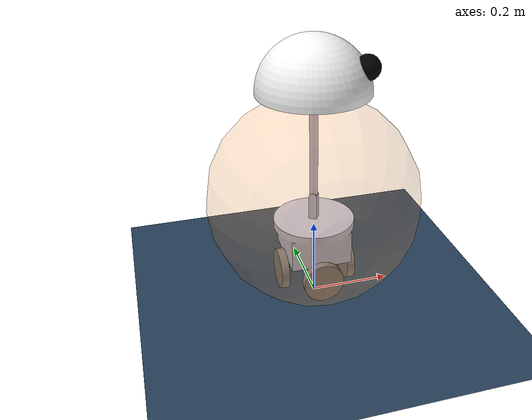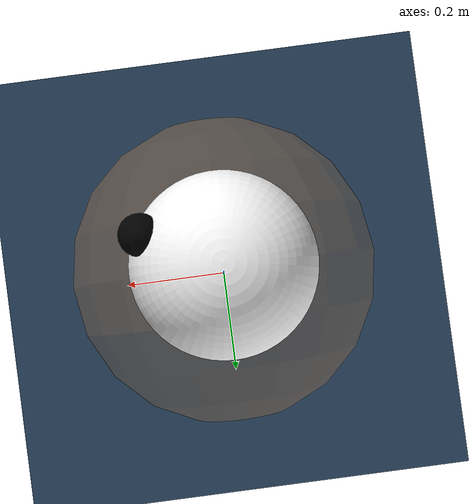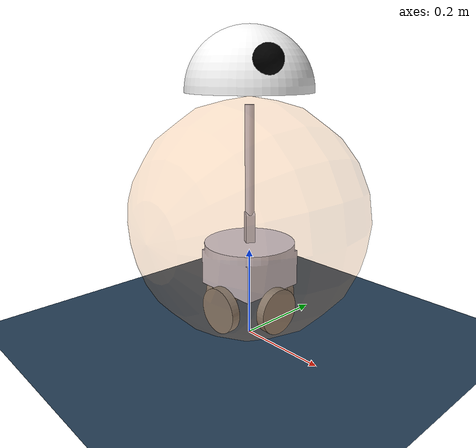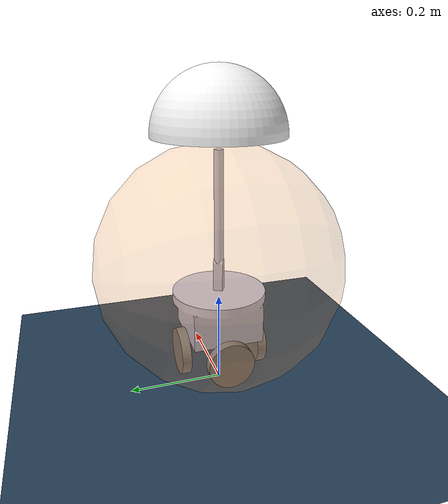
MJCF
<mujoco model="bb8_car">
  <compiler angle="radian" />
  <option timestep="0.001" integrator="implicit">
    <flag warmstart="enable" />
  </option>

  <asset>
    <mesh name="base_link" content_type="model/stl" file="base_link.STL" />
    <mesh name="a1" content_type="model/stl" file="a1.STL" />
    <mesh name="a2" content_type="model/stl" file="a2.STL" />
  <mesh name="h" content_type="model/stl" file="h.STL" scale="1.35 1.35 1.35" />
    <mesh name="w1" content_type="model/stl" file="w1.STL" />
    <mesh name="w2" content_type="model/stl" file="w2.STL" />
    <mesh name="w3" content_type="model/stl" file="w3.STL" />
    <mesh name="w4" content_type="model/stl" file="w4.STL" />
    <texture name="grid" type="2d" builtin="checker" rgb1=".1 .2 .3" rgb2=".2 .3 .4" width="300"
      height="300" />
    <material name="grid" texture="grid" texrepeat="8 8" reflectance=".2" />

    <texture name="bb8_tex" type="2d" file="../sim/bb8_textures/bb8one.png"/>
    <material name="bb8_mat" texture="bb8_tex" texrepeat="1 1" texuniform="false"/>

    <texture name="bb8_head_tex" type="2d" file="../sim/bb8_textures/bb8head.png"/>
    <!-- head texture removed -->
  </asset>

  <worldbody>
    <light name="top" pos="0 0 20" />
    <geom name="floor" type="plane" pos="0 0 0" size="5 5 0.1" material="grid" contype="1"
      conaffinity="1" />
    <body name="base_link" pos="0 0 0.2" quat="-0.707107 0.707107 0 0">
      <camera name="track_com" pos="1.253 -1.502 0.378"
        xyaxes="0.768 0.641 0.000 -0.101 0.122 0.987" mode="trackcom" />
      <inertial pos="-4.4409E-16 0.027063 -3.3307E-16" quat="0 0 0 1" mass="20"
        diaginertia="0.0059267 0.0098916 0.0059267" />

      <geom type="mesh" rgba="0.79216 0.81961 0.93333 1" mesh="base_link" />
      <geom name="sphere" type="sphere" pos="0 -0.075 0" size="0.2625" rgba="0.988 0.612 0.263 0.25"
        contype="0" conaffinity="0" />
      <body name="a1" pos="0 -0.02 0" quat="0.356335 0.356338 0.610757 -0.610757">
        <inertial pos="0 0 0.033964" quat="0.707107 0 0 0.707107" mass="0.027142"
          diaginertia="5.8419e-06 5.8158e-06 1.7833e-06" />
        <joint name="a1" pos="0 0 0" axis="0 0 -1" />
        <geom type="mesh" rgba="0.79216 0.81961 0.93333 1" mesh="a1" contype="0" conaffinity="0" />
        <body name="a2" pos="0 0 0.06" quat="1 0 0 0">
          <inertial pos="4.0307e-08 1.6883e-08 0.12424" quat="0.999977 0 0 0.0067613"
            mass="0.072732" diaginertia="0.00032679 0.00032678 3.6454e-06" />
          <joint name="a2" pos="0 0 0" axis="1 0 0" />
          <geom type="mesh" rgba="0.79216 0.81961 0.93333 1" mesh="a2" />
          <body name="h" pos="0 0 0.40" quat="0.51312 0.486525 0.513122 -0.486527">
            <inertial pos="0.0625 0 0" mass="0.5" diaginertia="0.0083776 0.0054323 0.0054323" />
              <joint name="h" pos="0 0 0" axis="-1 0 0" />
              <!-- make head visually all white -->
              <geom type="mesh" rgba="1 1 1 1" mesh="h" />
      <!-- larger visual-only black dot on the front of the head (no collision)
        moved forward and slightly raised so it sits clearly on the visible face -->
  <!-- move dot closer to the head and shrink it as requested; lowered further to sit like an eye -->
        <geom type="sphere" pos="0.07 0.0 -0.12" size="0.03" rgba="0 0 0 1" contype="0" conaffinity="0" />
          </body>
        </body>
      </body>
      <body name="w1" pos="-0.095 0.117 0" quat="0.499998 0.5 -0.5 0.500002" >
        <inertial pos="0 -0.01 0" quat="0.707107 0 0 0.707107" mass="0.15708"
          diaginertia="0.00019635 0.00010341 0.00010341" />
        <joint name="w1" pos="0 0 0" axis="0 1 0" damping="0.1" />
        <geom type="mesh" mesh="w1" friction="0.8 0.005 0.01" condim="3"/>
      </body>
      <body name="w2" pos="0 0.117 -0.095" quat="0.499998 0.5 -0.5 0.500002">
        <inertial pos="0.01 0 0" mass="0.15708" diaginertia="0.00019635 0.00010341 0.00010341" />
        <joint name="w2" pos="0 0 0" axis="-1 0 0" damping="0.1" />
        <geom type="mesh" mesh="w2" friction="0.8 0.005 0.01" condim="3"/>
      </body>
      <body name="w3" pos="0.095 0.117 0" quat="0.499998 0.5 -0.5 0.500002">
        <inertial pos="0 0.01 0" quat="0.707107 0 0 0.707107" mass="0.15708"
          diaginertia="0.00019635 0.00010341 0.00010341" />
        <joint name="w3" pos="0 0 0" axis="0 -1 0" damping="0.1" />
        <geom type="mesh" mesh="w3" friction="0.8 0.005 0.01" condim="3"/>
      </body>
      <body name="w4" pos="0 0.117 0.095" quat="0.499998 0.5 -0.5 0.500002">
        <inertial pos="-0.01 0 0" mass="0.15708" diaginertia="0.00019635 0.00010341 0.00010341" />
        <joint name="w4" pos="0 0 0" axis="1 0 0" damping="0.1" />
        <geom type="mesh" mesh="w4" friction="0.8 0.005 0.01" condim="3"/>
      </body>
    </body>
  </worldbody>

  <actuator>
    <position name="a1_motor" joint="a1" kp="100" kv="20" ctrlrange="-3.14 3.14" />
    <position name="a2_motor" joint="a2" kp="50" kv="15" ctrlrange="-0.5236 0.5236" />
  <position name="h_motor" joint="h" kp="300" kv="10" />
    <motor name="w1_motor" joint="w1" gear="5" ctrllimited="true" ctrlrange="-1 1" />
    <motor name="w2_motor" joint="w2" gear="5" ctrllimited="true" ctrlrange="-1 1" />
    <motor name="w3_motor" joint="w3" gear="5" ctrllimited="true" ctrlrange="-1 1" />
    <motor name="w4_motor" joint="w4" gear="5" ctrllimited="true" ctrlrange="-1 1" />

  </actuator>
</mujoco>
